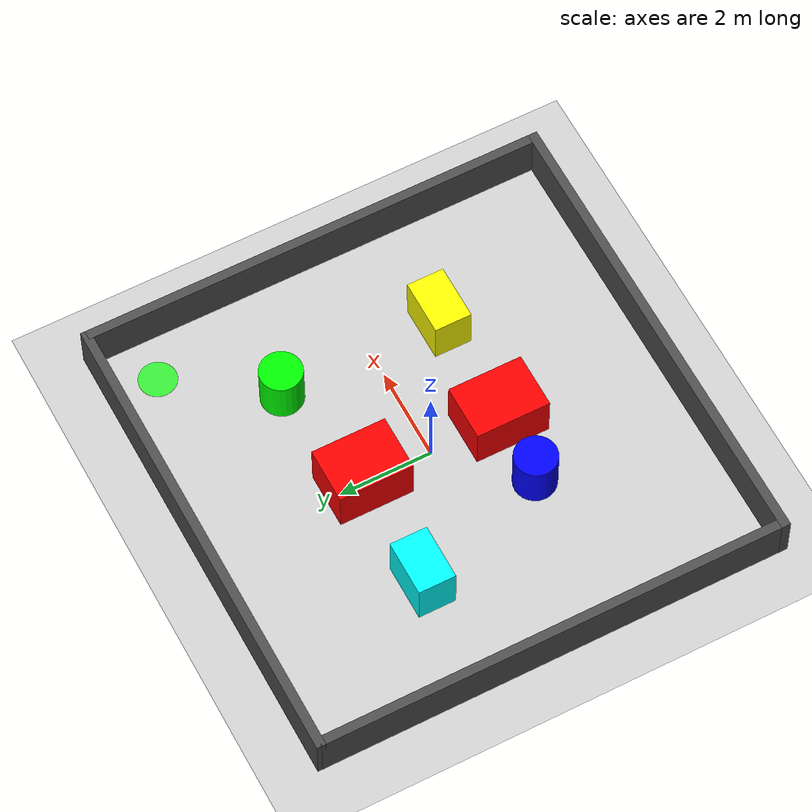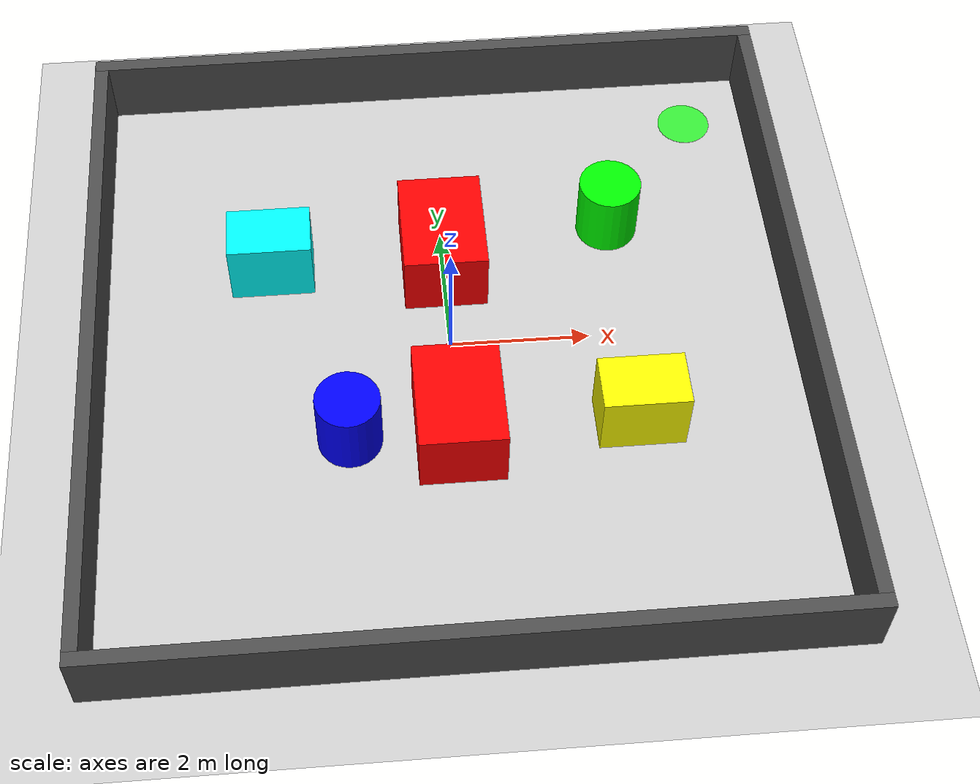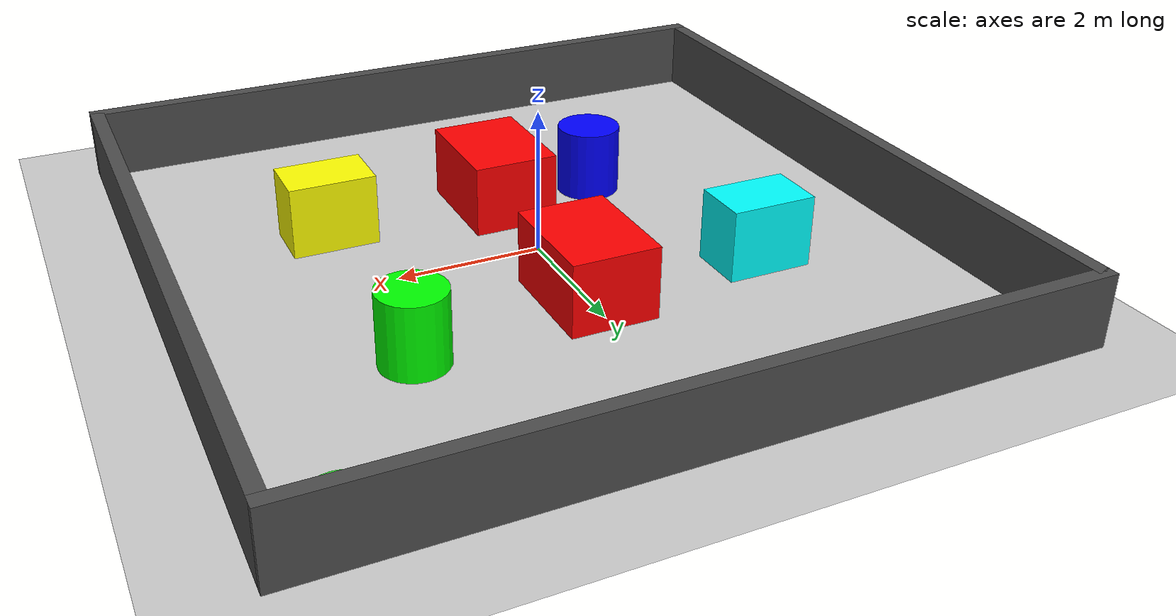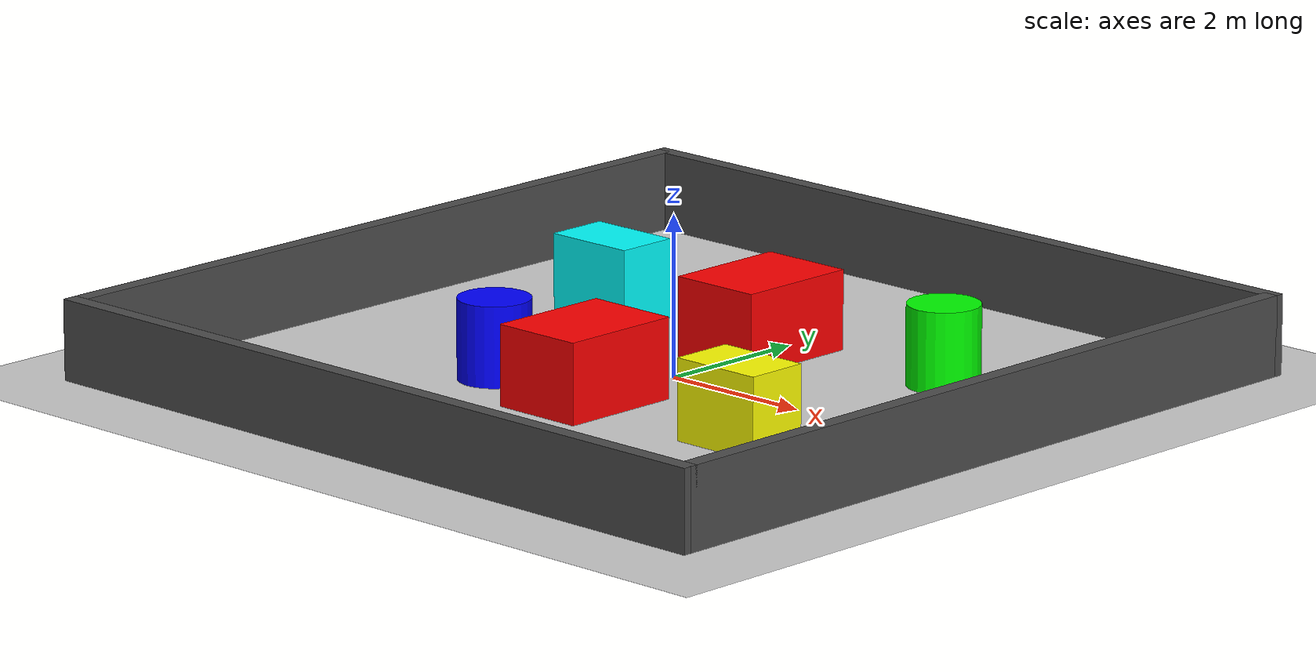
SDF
<?xml version="1.0" ?>
<sdf version="1.8">
  <world name="tp2_maze">
    <plugin filename="gz-sim-physics-system" name="gz::sim::systems::Physics"></plugin>
    <plugin filename="gz-sim-scene-broadcaster-system" name="gz::sim::systems::SceneBroadcaster"></plugin>
    <plugin filename="gz-sim-user-commands-system" name="gz::sim::systems::UserCommands"></plugin>

    <light type="directional" name="sun">
      <cast_shadows>true</cast_shadows>
      <pose>0 0 10 0 0 0</pose>
      <diffuse>0.8 0.8 0.8 1</diffuse>
      <direction>-0.5 0.1 -0.9</direction>
    </light>

    <model name="ground_plane">
      <static>true</static>
      <link name="link">
        <collision name="collision"><geometry><plane><normal>0 0 1</normal><size>100 100</size></plane></geometry></collision>
        <visual name="visual"><geometry><plane><normal>0 0 1</normal><size>100 100</size></plane></geometry>
        <material><ambient>0.8 0.8 0.8 1</ambient><diffuse>0.8 0.8 0.8 1</diffuse></material></visual>
      </link>
    </model>

    <model name="walls">
      <static>true</static>
      <link name="wall_n"><pose>0 5 0.5 0 0 0</pose><collision name="c"><geometry><box><size>10.2 0.2 1</size></box></geometry></collision><visual name="v"><geometry><box><size>10.2 0.2 1</size></box></geometry><material><ambient>0.3 0.3 0.3 1</ambient><diffuse>0.3 0.3 0.3 1</diffuse></material></visual></link>
      <link name="wall_s"><pose>0 -5 0.5 0 0 0</pose><collision name="c"><geometry><box><size>10.2 0.2 1</size></box></geometry></collision><visual name="v"><geometry><box><size>10.2 0.2 1</size></box></geometry><material><ambient>0.3 0.3 0.3 1</ambient><diffuse>0.3 0.3 0.3 1</diffuse></material></visual></link>
      <link name="wall_e"><pose>5 0 0.5 0 0 0</pose><collision name="c"><geometry><box><size>0.2 10 1</size></box></geometry></collision><visual name="v"><geometry><box><size>0.2 10 1</size></box></geometry><material><ambient>0.3 0.3 0.3 1</ambient><diffuse>0.3 0.3 0.3 1</diffuse></material></visual></link>
      <link name="wall_w"><pose>-5 0 0.5 0 0 0</pose><collision name="c"><geometry><box><size>0.2 10 1</size></box></geometry></collision><visual name="v"><geometry><box><size>0.2 10 1</size></box></geometry><material><ambient>0.3 0.3 0.3 1</ambient><diffuse>0.3 0.3 0.3 1</diffuse></material></visual></link>
    </model>

    <model name="obs_centro_cima"><static>true</static><pose>0 1.5 0.5 0 0 0</pose><link name="l"><collision name="c"><geometry><box><size>1.2 1.6 1</size></box></geometry></collision><visual name="v"><geometry><box><size>1.2 1.6 1</size></box></geometry><material><ambient>1 0 0 1</ambient><diffuse>1 0 0 1</diffuse></material></visual></link></model>
    <model name="obs_centro_baixo"><static>true</static><pose>0 -1.5 0.5 0 0 0</pose><link name="l"><collision name="c"><geometry><box><size>1.2 1.6 1</size></box></geometry></collision><visual name="v"><geometry><box><size>1.2 1.6 1</size></box></geometry><material><ambient>1 0 0 1</ambient><diffuse>1 0 0 1</diffuse></material></visual></link></model>

    <model name="obs_c1"><static>true</static><pose>2.5 2.0 0.5 0 0 0</pose><link name="l"><collision name="c"><geometry><cylinder><radius>0.45</radius><length>1</length></cylinder></geometry></collision><visual name="v"><geometry><cylinder><radius>0.45</radius><length>1</length></cylinder></geometry><material><ambient>0 1 0 1</ambient><diffuse>0 1 0 1</diffuse></material></visual></link></model>
    <model name="obs_c2"><static>true</static><pose>-1.5 -1.5 0.5 0 0 0</pose><link name="l"><collision name="c"><geometry><cylinder><radius>0.45</radius><length>1</length></cylinder></geometry></collision><visual name="v"><geometry><cylinder><radius>0.45</radius><length>1</length></cylinder></geometry><material><ambient>0 0 1 1</ambient><diffuse>0 0 1 1</diffuse></material></visual></link></model>
    <model name="obs_b3"><static>true</static><pose>2.5 -1.5 0.5 0 0 0</pose><link name="l"><collision name="c"><geometry><box><size>1.2 0.8 1</size></box></geometry></collision><visual name="v"><geometry><box><size>1.2 0.8 1</size></box></geometry><material><ambient>1 1 0 1</ambient><diffuse>1 1 0 1</diffuse></material></visual></link></model>
    <model name="obs_b4"><static>true</static><pose>-2.5 1.5 0.5 0 0 0</pose><link name="l"><collision name="c"><geometry><box><size>1.2 0.8 1</size></box></geometry></collision><visual name="v"><geometry><box><size>1.2 0.8 1</size></box></geometry><material><ambient>0 1 1 1</ambient><diffuse>0 1 1 1</diffuse></material></visual></link></model>

    <model name="goal_area">
      <static>true</static>
      <pose>4.0 4.0 0.01 0 0 0</pose>
      <link name="link">
        <visual name="visual">
          <geometry><cylinder><radius>0.4</radius><length>0.01</length></cylinder></geometry>
          <material><ambient>0.0 1.0 0.0 0.7</ambient><diffuse>0.0 1.0 0.0 0.7</diffuse></material>
        </visual>
      </link>
    </model>
  </world>
</sdf>
